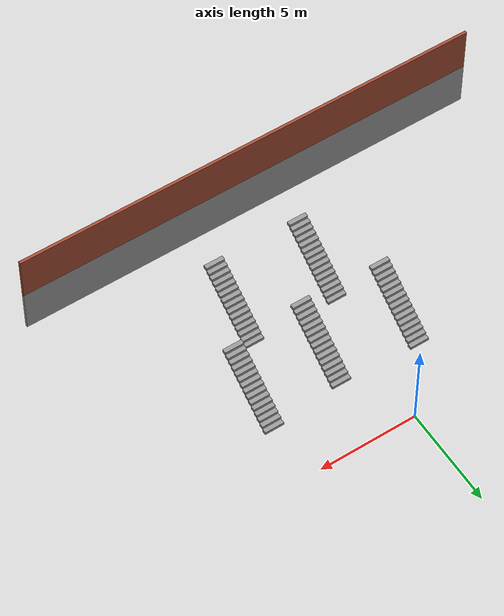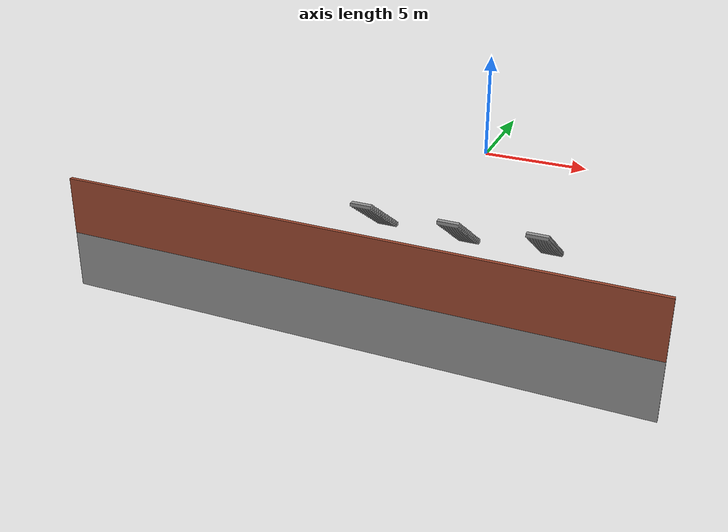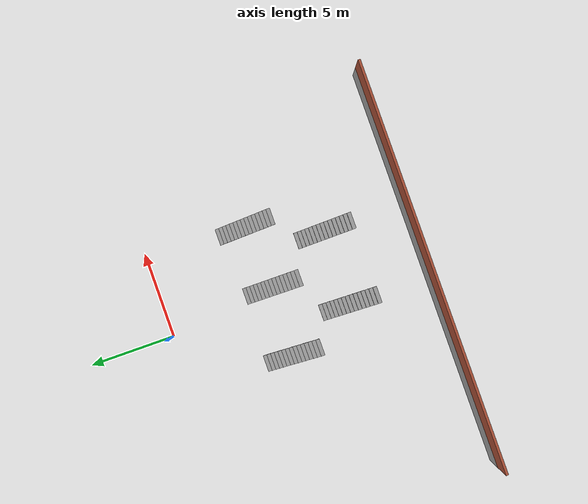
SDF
<sdf version="1.6">
 <world name="default">
  <model name="Untitled_2">
   <pose>-1.18521 -8.18185 -2.6 0 -0 0</pose>
   <link name="Stairs_41">
    <visual name="Stairs_41_Visual_0">
     <pose>-2.27562 3.7332 0.083333 0 -0 0</pose>
     <geometry><box><size>1 0.233333 0.166667</size></box></geometry>
     <material>
      <script><uri>file://media/materials/scripts/gazebo.material</uri><name>Gazebo/Grey</name></script>
      <ambient>1 1 1 1</ambient>
     </material>
     <meta><layer>0</layer></meta>
    </visual>
    <collision name="Stairs_41_Collision_0">
     <geometry><box><size>1 0.233333 0.166667</size></box></geometry>
     <pose>-2.27562 3.7332 0.083333 0 -0 0</pose>
    </collision>
    <visual name="Stairs_41_Visual_1">
     <pose>-2.27562 3.49987 0.25 0 -0 0</pose>
     <geometry><box><size>1 0.233333 0.166667</size></box></geometry>
     <material>
      <script><uri>file://media/materials/scripts/gazebo.material</uri><name>Gazebo/Grey</name></script>
      <ambient>1 1 1 1</ambient>
     </material>
     <meta><layer>0</layer></meta>
    </visual>
    <collision name="Stairs_41_Collision_1">
     <geometry><box><size>1 0.233333 0.166667</size></box></geometry>
     <pose>-2.27562 3.49987 0.25 0 -0 0</pose>
    </collision>
    <visual name="Stairs_41_Visual_2">
     <pose>-2.27562 3.26654 0.416667 0 -0 0</pose>
     <geometry><box><size>1 0.233333 0.166667</size></box></geometry>
     <material>
      <script><uri>file://media/materials/scripts/gazebo.material</uri><name>Gazebo/Grey</name></script>
      <ambient>1 1 1 1</ambient>
     </material>
     <meta><layer>0</layer></meta>
    </visual>
    <collision name="Stairs_41_Collision_2">
     <geometry><box><size>1 0.233333 0.166667</size></box></geometry>
     <pose>-2.27562 3.26654 0.416667 0 -0 0</pose>
    </collision>
    <visual name="Stairs_41_Visual_3">
     <pose>-2.27562 3.03321 0.583333 0 -0 0</pose>
     <geometry><box><size>1 0.233333 0.166667</size></box></geometry>
     <material>
      <script><uri>file://media/materials/scripts/gazebo.material</uri><name>Gazebo/Grey</name></script>
      <ambient>1 1 1 1</ambient>
     </material>
     <meta><layer>0</layer></meta>
    </visual>
    <collision name="Stairs_41_Collision_3">
     <geometry><box><size>1 0.233333 0.166667</size></box></geometry>
     <pose>-2.27562 3.03321 0.583333 0 -0 0</pose>
    </collision>
    <visual name="Stairs_41_Visual_4">
     <pose>-2.27562 2.79987 0.75 0 -0 0</pose>
     <geometry><box><size>1 0.233333 0.166667</size></box></geometry>
     <material>
      <script><uri>file://media/materials/scripts/gazebo.material</uri><name>Gazebo/Grey</name></script>
      <ambient>1 1 1 1</ambient>
     </material>
     <meta><layer>0</layer></meta>
    </visual>
    <collision name="Stairs_41_Collision_4">
     <geometry><box><size>1 0.233333 0.166667</size></box></geometry>
     <pose>-2.27562 2.79987 0.75 0 -0 0</pose>
    </collision>
    <visual name="Stairs_41_Visual_5">
     <pose>-2.27562 2.56654 0.916667 0 -0 0</pose>
     <geometry><box><size>1 0.233333 0.166667</size></box></geometry>
     <material>
      <script><uri>file://media/materials/scripts/gazebo.material</uri><name>Gazebo/Grey</name></script>
      <ambient>1 1 1 1</ambient>
     </material>
     <meta><layer>0</layer></meta>
    </visual>
    <collision name="Stairs_41_Collision_5">
     <geometry><box><size>1 0.233333 0.166667</size></box></geometry>
     <pose>-2.27562 2.56654 0.916667 0 -0 0</pose>
    </collision>
    <visual name="Stairs_41_Visual_6">
     <pose>-2.27562 2.3332 1.08333 0 -0 0</pose>
     <geometry><box><size>1 0.233333 0.166667</size></box></geometry>
     <material>
      <script><uri>file://media/materials/scripts/gazebo.material</uri><name>Gazebo/Grey</name></script>
      <ambient>1 1 1 1</ambient>
     </material>
     <meta><layer>0</layer></meta>
    </visual>
    <collision name="Stairs_41_Collision_6">
     <geometry><box><size>1 0.233333 0.166667</size></box></geometry>
     <pose>-2.27562 2.3332 1.08333 0 -0 0</pose>
    </collision>
    <visual name="Stairs_41_Visual_7">
     <pose>-2.27562 2.09987 1.25 0 -0 0</pose>
     <geometry><box><size>1 0.233333 0.166667</size></box></geometry>
     <material>
      <script><uri>file://media/materials/scripts/gazebo.material</uri><name>Gazebo/Grey</name></script>
      <ambient>1 1 1 1</ambient>
     </material>
     <meta><layer>0</layer></meta>
    </visual>
    <collision name="Stairs_41_Collision_7">
     <geometry><box><size>1 0.233333 0.166667</size></box></geometry>
     <pose>-2.27562 2.09987 1.25 0 -0 0</pose>
    </collision>
    <visual name="Stairs_41_Visual_8">
     <pose>-2.27562 1.86654 1.41667 0 -0 0</pose>
     <geometry><box><size>1 0.233333 0.166667</size></box></geometry>
     <material>
      <script><uri>file://media/materials/scripts/gazebo.material</uri><name>Gazebo/Grey</name></script>
      <ambient>1 1 1 1</ambient>
     </material>
     <meta><layer>0</layer></meta>
    </visual>
    <collision name="Stairs_41_Collision_8">
     <geometry><box><size>1 0.233333 0.166667</size></box></geometry>
     <pose>-2.27562 1.86654 1.41667 0 -0 0</pose>
    </collision>
    <visual name="Stairs_41_Visual_9">
     <pose>-2.27562 1.63321 1.58333 0 -0 0</pose>
     <geometry><box><size>1 0.233333 0.166667</size></box></geometry>
     <material>
      <script><uri>file://media/materials/scripts/gazebo.material</uri><name>Gazebo/Grey</name></script>
      <ambient>1 1 1 1</ambient>
     </material>
     <meta><layer>0</layer></meta>
    </visual>
    <collision name="Stairs_41_Collision_9">
     <geometry><box><size>1 0.233333 0.166667</size></box></geometry>
     <pose>-2.27562 1.63321 1.58333 0 -0 0</pose>
    </collision>
    <visual name="Stairs_41_Visual_10">
     <pose>-2.27562 1.39987 1.75 0 -0 0</pose>
     <geometry><box><size>1 0.233333 0.166667</size></box></geometry>
     <material>
      <script><uri>file://media/materials/scripts/gazebo.material</uri><name>Gazebo/Grey</name></script>
      <ambient>1 1 1 1</ambient>
     </material>
     <meta><layer>0</layer></meta>
    </visual>
    <collision name="Stairs_41_Collision_10">
     <geometry><box><size>1 0.233333 0.166667</size></box></geometry>
     <pose>-2.27562 1.39987 1.75 0 -0 0</pose>
    </collision>
    <visual name="Stairs_41_Visual_11">
     <pose>-2.27562 1.16654 1.91667 0 -0 0</pose>
     <geometry><box><size>1 0.233333 0.166667</size></box></geometry>
     <material>
      <script><uri>file://media/materials/scripts/gazebo.material</uri><name>Gazebo/Grey</name></script>
      <ambient>1 1 1 1</ambient>
     </material>
     <meta><layer>0</layer></meta>
    </visual>
    <collision name="Stairs_41_Collision_11">
     <geometry><box><size>1 0.233333 0.166667</size></box></geometry>
     <pose>-2.27562 1.16654 1.91667 0 -0 0</pose>
    </collision>
    <visual name="Stairs_41_Visual_12">
     <pose>-2.27562 0.933206 2.08333 0 -0 0</pose>
     <geometry><box><size>1 0.233333 0.166667</size></box></geometry>
     <material>
      <script><uri>file://media/materials/scripts/gazebo.material</uri><name>Gazebo/Grey</name></script>
      <ambient>1 1 1 1</ambient>
     </material>
     <meta><layer>0</layer></meta>
    </visual>
    <collision name="Stairs_41_Collision_12">
     <geometry><box><size>1 0.233333 0.166667</size></box></geometry>
     <pose>-2.27562 0.933206 2.08333 0 -0 0</pose>
    </collision>
    <visual name="Stairs_41_Visual_13">
     <pose>-2.27562 0.699872 2.25 0 -0 0</pose>
     <geometry><box><size>1 0.233333 0.166667</size></box></geometry>
     <material>
      <script><uri>file://media/materials/scripts/gazebo.material</uri><name>Gazebo/Grey</name></script>
      <ambient>1 1 1 1</ambient>
     </material>
     <meta><layer>0</layer></meta>
    </visual>
    <collision name="Stairs_41_Collision_13">
     <geometry><box><size>1 0.233333 0.166667</size></box></geometry>
     <pose>-2.27562 0.699872 2.25 0 -0 0</pose>
    </collision>
    <visual name="Stairs_41_Visual_14">
     <pose>-2.27562 0.466539 2.41667 0 -0 0</pose>
     <geometry><box><size>1 0.233333 0.166667</size></box></geometry>
     <material>
      <script><uri>file://media/materials/scripts/gazebo.material</uri><name>Gazebo/Grey</name></script>
      <ambient>1 1 1 1</ambient>
     </material>
     <meta><layer>0</layer></meta>
    </visual>
    <collision name="Stairs_41_Collision_14">
     <geometry><box><size>1 0.233333 0.166667</size></box></geometry>
     <pose>-2.27562 0.466539 2.41667 0 -0 0</pose>
    </collision>
   </link>
   <link name="Stairs_42">
    <visual name="Stairs_42_Visual_0">
     <pose>-0.526618 -0.394449 0.083333 0 -0 0</pose>
     <geometry><box><size>1 0.233333 0.166667</size></box></geometry>
     <material>
      <script><uri>file://media/materials/scripts/gazebo.material</uri><name>Gazebo/Grey</name></script>
      <ambient>1 1 1 1</ambient>
     </material>
     <meta><layer>0</layer></meta>
    </visual>
    <collision name="Stairs_42_Collision_0">
     <geometry><box><size>1 0.233333 0.166667</size></box></geometry>
     <pose>-0.526618 -0.394449 0.083333 0 -0 0</pose>
    </collision>
    <visual name="Stairs_42_Visual_1">
     <pose>-0.526618 -0.627783 0.25 0 -0 0</pose>
     <geometry><box><size>1 0.233333 0.166667</size></box></geometry>
     <material>
      <script><uri>file://media/materials/scripts/gazebo.material</uri><name>Gazebo/Grey</name></script>
      <ambient>1 1 1 1</ambient>
     </material>
     <meta><layer>0</layer></meta>
    </visual>
    <collision name="Stairs_42_Collision_1">
     <geometry><box><size>1 0.233333 0.166667</size></box></geometry>
     <pose>-0.526618 -0.627783 0.25 0 -0 0</pose>
    </collision>
    <visual name="Stairs_42_Visual_2">
     <pose>-0.526618 -0.861115 0.416667 0 -0 0</pose>
     <geometry><box><size>1 0.233333 0.166667</size></box></geometry>
     <material>
      <script><uri>file://media/materials/scripts/gazebo.material</uri><name>Gazebo/Grey</name></script>
      <ambient>1 1 1 1</ambient>
     </material>
     <meta><layer>0</layer></meta>
    </visual>
    <collision name="Stairs_42_Collision_2">
     <geometry><box><size>1 0.233333 0.166667</size></box></geometry>
     <pose>-0.526618 -0.861115 0.416667 0 -0 0</pose>
    </collision>
    <visual name="Stairs_42_Visual_3">
     <pose>-0.526618 -1.09445 0.583333 0 -0 0</pose>
     <geometry><box><size>1 0.233333 0.166667</size></box></geometry>
     <material>
      <script><uri>file://media/materials/scripts/gazebo.material</uri><name>Gazebo/Grey</name></script>
      <ambient>1 1 1 1</ambient>
     </material>
     <meta><layer>0</layer></meta>
    </visual>
    <collision name="Stairs_42_Collision_3">
     <geometry><box><size>1 0.233333 0.166667</size></box></geometry>
     <pose>-0.526618 -1.09445 0.583333 0 -0 0</pose>
    </collision>
    <visual name="Stairs_42_Visual_4">
     <pose>-0.526618 -1.32778 0.75 0 -0 0</pose>
     <geometry><box><size>1 0.233333 0.166667</size></box></geometry>
     <material>
      <script><uri>file://media/materials/scripts/gazebo.material</uri><name>Gazebo/Grey</name></script>
      <ambient>1 1 1 1</ambient>
     </material>
     <meta><layer>0</layer></meta>
    </visual>
    <collision name="Stairs_42_Collision_4">
     <geometry><box><size>1 0.233333 0.166667</size></box></geometry>
     <pose>-0.526618 -1.32778 0.75 0 -0 0</pose>
    </collision>
    <visual name="Stairs_42_Visual_5">
     <pose>-0.526618 -1.56112 0.916667 0 -0 0</pose>
     <geometry><box><size>1 0.233333 0.166667</size></box></geometry>
     <material>
      <script><uri>file://media/materials/scripts/gazebo.material</uri><name>Gazebo/Grey</name></script>
      <ambient>1 1 1 1</ambient>
     </material>
     <meta><layer>0</layer></meta>
    </visual>
    <collision name="Stairs_42_Collision_5">
     <geometry><box><size>1 0.233333 0.166667</size></box></geometry>
     <pose>-0.526618 -1.56112 0.916667 0 -0 0</pose>
    </collision>
    <visual name="Stairs_42_Visual_6">
     <pose>-0.526618 -1.79445 1.08333 0 -0 0</pose>
     <geometry><box><size>1 0.233333 0.166667</size></box></geometry>
     <material>
      <script><uri>file://media/materials/scripts/gazebo.material</uri><name>Gazebo/Grey</name></script>
      <ambient>1 1 1 1</ambient>
     </material>
     <meta><layer>0</layer></meta>
    </visual>
    <collision name="Stairs_42_Collision_6">
     <geometry><box><size>1 0.233333 0.166667</size></box></geometry>
     <pose>-0.526618 -1.79445 1.08333 0 -0 0</pose>
    </collision>
    <visual name="Stairs_42_Visual_7">
     <pose>-0.526618 -2.02778 1.25 0 -0 0</pose>
     <geometry><box><size>1 0.233333 0.166667</size></box></geometry>
     <material>
      <script><uri>file://media/materials/scripts/gazebo.material</uri><name>Gazebo/Grey</name></script>
      <ambient>1 1 1 1</ambient>
     </material>
     <meta><layer>0</layer></meta>
    </visual>
    <collision name="Stairs_42_Collision_7">
     <geometry><box><size>1 0.233333 0.166667</size></box></geometry>
     <pose>-0.526618 -2.02778 1.25 0 -0 0</pose>
    </collision>
    <visual name="Stairs_42_Visual_8">
     <pose>-0.526618 -2.26112 1.41667 0 -0 0</pose>
     <geometry><box><size>1 0.233333 0.166667</size></box></geometry>
     <material>
      <script><uri>file://media/materials/scripts/gazebo.material</uri><name>Gazebo/Grey</name></script>
      <ambient>1 1 1 1</ambient>
     </material>
     <meta><layer>0</layer></meta>
    </visual>
    <collision name="Stairs_42_Collision_8">
     <geometry><box><size>1 0.233333 0.166667</size></box></geometry>
     <pose>-0.526618 -2.26112 1.41667 0 -0 0</pose>
    </collision>
    <visual name="Stairs_42_Visual_9">
     <pose>-0.526618 -2.49445 1.58333 0 -0 0</pose>
     <geometry><box><size>1 0.233333 0.166667</size></box></geometry>
     <material>
      <script><uri>file://media/materials/scripts/gazebo.material</uri><name>Gazebo/Grey</name></script>
      <ambient>1 1 1 1</ambient>
     </material>
     <meta><layer>0</layer></meta>
    </visual>
    <collision name="Stairs_42_Collision_9">
     <geometry><box><size>1 0.233333 0.166667</size></box></geometry>
     <pose>-0.526618 -2.49445 1.58333 0 -0 0</pose>
    </collision>
    <visual name="Stairs_42_Visual_10">
     <pose>-0.526618 -2.72778 1.75 0 -0 0</pose>
     <geometry><box><size>1 0.233333 0.166667</size></box></geometry>
     <material>
      <script><uri>file://media/materials/scripts/gazebo.material</uri><name>Gazebo/Grey</name></script>
      <ambient>1 1 1 1</ambient>
     </material>
     <meta><layer>0</layer></meta>
    </visual>
    <collision name="Stairs_42_Collision_10">
     <geometry><box><size>1 0.233333 0.166667</size></box></geometry>
     <pose>-0.526618 -2.72778 1.75 0 -0 0</pose>
    </collision>
    <visual name="Stairs_42_Visual_11">
     <pose>-0.526618 -2.96112 1.91667 0 -0 0</pose>
     <geometry><box><size>1 0.233333 0.166667</size></box></geometry>
     <material>
      <script><uri>file://media/materials/scripts/gazebo.material</uri><name>Gazebo/Grey</name></script>
      <ambient>1 1 1 1</ambient>
     </material>
     <meta><layer>0</layer></meta>
    </visual>
    <collision name="Stairs_42_Collision_11">
     <geometry><box><size>1 0.233333 0.166667</size></box></geometry>
     <pose>-0.526618 -2.96112 1.91667 0 -0 0</pose>
    </collision>
    <visual name="Stairs_42_Visual_12">
     <pose>-0.526618 -3.19445 2.08333 0 -0 0</pose>
     <geometry><box><size>1 0.233333 0.166667</size></box></geometry>
     <material>
      <script><uri>file://media/materials/scripts/gazebo.material</uri><name>Gazebo/Grey</name></script>
      <ambient>1 1 1 1</ambient>
     </material>
     <meta><layer>0</layer></meta>
    </visual>
    <collision name="Stairs_42_Collision_12">
     <geometry><box><size>1 0.233333 0.166667</size></box></geometry>
     <pose>-0.526618 -3.19445 2.08333 0 -0 0</pose>
    </collision>
    <visual name="Stairs_42_Visual_13">
     <pose>-0.526618 -3.42778 2.25 0 -0 0</pose>
     <geometry><box><size>1 0.233333 0.166667</size></box></geometry>
     <material>
      <script><uri>file://media/materials/scripts/gazebo.material</uri><name>Gazebo/Grey</name></script>
      <ambient>1 1 1 1</ambient>
     </material>
     <meta><layer>0</layer></meta>
    </visual>
    <collision name="Stairs_42_Collision_13">
     <geometry><box><size>1 0.233333 0.166667</size></box></geometry>
     <pose>-0.526618 -3.42778 2.25 0 -0 0</pose>
    </collision>
    <visual name="Stairs_42_Visual_14">
     <pose>-0.526618 -3.66112 2.41667 0 -0 0</pose>
     <geometry><box><size>1 0.233333 0.166667</size></box></geometry>
     <material>
      <script><uri>file://media/materials/scripts/gazebo.material</uri><name>Gazebo/Grey</name></script>
      <ambient>1 1 1 1</ambient>
     </material>
     <meta><layer>0</layer></meta>
    </visual>
    <collision name="Stairs_42_Collision_14">
     <geometry><box><size>1 0.233333 0.166667</size></box></geometry>
     <pose>-0.526618 -3.66112 2.41667 0 -0 0</pose>
    </collision>
   </link>
   <link name="Stairs_43">
    <visual name="Stairs_43_Visual_0">
     <pose>1.92199 3.5583 0.083333 0 -0 0</pose>
     <geometry><box><size>1 0.233333 0.166667</size></box></geometry>
     <material>
      <script><uri>file://media/materials/scripts/gazebo.material</uri><name>Gazebo/Grey</name></script>
      <ambient>1 1 1 1</ambient>
     </material>
     <meta><layer>0</layer></meta>
    </visual>
    <collision name="Stairs_43_Collision_0">
     <geometry><box><size>1 0.233333 0.166667</size></box></geometry>
     <pose>1.92199 3.5583 0.083333 0 -0 0</pose>
    </collision>
    <visual name="Stairs_43_Visual_1">
     <pose>1.92199 3.32497 0.25 0 -0 0</pose>
     <geometry><box><size>1 0.233333 0.166667</size></box></geometry>
     <material>
      <script><uri>file://media/materials/scripts/gazebo.material</uri><name>Gazebo/Grey</name></script>
      <ambient>1 1 1 1</ambient>
     </material>
     <meta><layer>0</layer></meta>
    </visual>
    <collision name="Stairs_43_Collision_1">
     <geometry><box><size>1 0.233333 0.166667</size></box></geometry>
     <pose>1.92199 3.32497 0.25 0 -0 0</pose>
    </collision>
    <visual name="Stairs_43_Visual_2">
     <pose>1.92199 3.09164 0.416667 0 -0 0</pose>
     <geometry><box><size>1 0.233333 0.166667</size></box></geometry>
     <material>
      <script><uri>file://media/materials/scripts/gazebo.material</uri><name>Gazebo/Grey</name></script>
      <ambient>1 1 1 1</ambient>
     </material>
     <meta><layer>0</layer></meta>
    </visual>
    <collision name="Stairs_43_Collision_2">
     <geometry><box><size>1 0.233333 0.166667</size></box></geometry>
     <pose>1.92199 3.09164 0.416667 0 -0 0</pose>
    </collision>
    <visual name="Stairs_43_Visual_3">
     <pose>1.92199 2.85831 0.583333 0 -0 0</pose>
     <geometry><box><size>1 0.233333 0.166667</size></box></geometry>
     <material>
      <script><uri>file://media/materials/scripts/gazebo.material</uri><name>Gazebo/Grey</name></script>
      <ambient>1 1 1 1</ambient>
     </material>
     <meta><layer>0</layer></meta>
    </visual>
    <collision name="Stairs_43_Collision_3">
     <geometry><box><size>1 0.233333 0.166667</size></box></geometry>
     <pose>1.92199 2.85831 0.583333 0 -0 0</pose>
    </collision>
    <visual name="Stairs_43_Visual_4">
     <pose>1.92199 2.62497 0.75 0 -0 0</pose>
     <geometry><box><size>1 0.233333 0.166667</size></box></geometry>
     <material>
      <script><uri>file://media/materials/scripts/gazebo.material</uri><name>Gazebo/Grey</name></script>
      <ambient>1 1 1 1</ambient>
     </material>
     <meta><layer>0</layer></meta>
    </visual>
    <collision name="Stairs_43_Collision_4">
     <geometry><box><size>1 0.233333 0.166667</size></box></geometry>
     <pose>1.92199 2.62497 0.75 0 -0 0</pose>
    </collision>
    <visual name="Stairs_43_Visual_5">
     <pose>1.92199 2.39164 0.916667 0 -0 0</pose>
     <geometry><box><size>1 0.233333 0.166667</size></box></geometry>
     <material>
      <script><uri>file://media/materials/scripts/gazebo.material</uri><name>Gazebo/Grey</name></script>
      <ambient>1 1 1 1</ambient>
     </material>
     <meta><layer>0</layer></meta>
    </visual>
    <collision name="Stairs_43_Collision_5">
     <geometry><box><size>1 0.233333 0.166667</size></box></geometry>
     <pose>1.92199 2.39164 0.916667 0 -0 0</pose>
    </collision>
    <visual name="Stairs_43_Visual_6">
     <pose>1.92199 2.1583 1.08333 0 -0 0</pose>
     <geometry><box><size>1 0.233333 0.166667</size></box></geometry>
     <material>
      <script><uri>file://media/materials/scripts/gazebo.material</uri><name>Gazebo/Grey</name></script>
      <ambient>1 1 1 1</ambient>
     </material>
     <meta><layer>0</layer></meta>
    </visual>
    <collision name="Stairs_43_Collision_6">
     <geometry><box><size>1 0.233333 0.166667</size></box></geometry>
     <pose>1.92199 2.1583 1.08333 0 -0 0</pose>
    </collision>
    <visual name="Stairs_43_Visual_7">
     <pose>1.92199 1.92497 1.25 0 -0 0</pose>
     <geometry><box><size>1 0.233333 0.166667</size></box></geometry>
     <material>
      <script><uri>file://media/materials/scripts/gazebo.material</uri><name>Gazebo/Grey</name></script>
      <ambient>1 1 1 1</ambient>
     </material>
     <meta><layer>0</layer></meta>
    </visual>
    <collision name="Stairs_43_Collision_7">
     <geometry><box><size>1 0.233333 0.166667</size></box></geometry>
     <pose>1.92199 1.92497 1.25 0 -0 0</pose>
    </collision>
    <visual name="Stairs_43_Visual_8">
     <pose>1.92199 1.69164 1.41667 0 -0 0</pose>
     <geometry><box><size>1 0.233333 0.166667</size></box></geometry>
     <material>
      <script><uri>file://media/materials/scripts/gazebo.material</uri><name>Gazebo/Grey</name></script>
      <ambient>1 1 1 1</ambient>
     </material>
     <meta><layer>0</layer></meta>
    </visual>
    <collision name="Stairs_43_Collision_8">
     <geometry><box><size>1 0.233333 0.166667</size></box></geometry>
     <pose>1.92199 1.69164 1.41667 0 -0 0</pose>
    </collision>
    <visual name="Stairs_43_Visual_9">
     <pose>1.92199 1.4583 1.58333 0 -0 0</pose>
     <geometry><box><size>1 0.233333 0.166667</size></box></geometry>
     <material>
      <script><uri>file://media/materials/scripts/gazebo.material</uri><name>Gazebo/Grey</name></script>
      <ambient>1 1 1 1</ambient>
     </material>
     <meta><layer>0</layer></meta>
    </visual>
    <collision name="Stairs_43_Collision_9">
     <geometry><box><size>1 0.233333 0.166667</size></box></geometry>
     <pose>1.92199 1.4583 1.58333 0 -0 0</pose>
    </collision>
    <visual name="Stairs_43_Visual_10">
     <pose>1.92199 1.22497 1.75 0 -0 0</pose>
     <geometry><box><size>1 0.233333 0.166667</size></box></geometry>
     <material>
      <script><uri>file://media/materials/scripts/gazebo.material</uri><name>Gazebo/Grey</name></script>
      <ambient>1 1 1 1</ambient>
     </material>
     <meta><layer>0</layer></meta>
    </visual>
    <collision name="Stairs_43_Collision_10">
     <geometry><box><size>1 0.233333 0.166667</size></box></geometry>
     <pose>1.92199 1.22497 1.75 0 -0 0</pose>
    </collision>
    <visual name="Stairs_43_Visual_11">
     <pose>1.92199 0.991638 1.91667 0 -0 0</pose>
     <geometry><box><size>1 0.233333 0.166667</size></box></geometry>
     <material>
      <script><uri>file://media/materials/scripts/gazebo.material</uri><name>Gazebo/Grey</name></script>
      <ambient>1 1 1 1</ambient>
     </material>
     <meta><layer>0</layer></meta>
    </visual>
    <collision name="Stairs_43_Collision_11">
     <geometry><box><size>1 0.233333 0.166667</size></box></geometry>
     <pose>1.92199 0.991638 1.91667 0 -0 0</pose>
    </collision>
    <visual name="Stairs_43_Visual_12">
     <pose>1.92199 0.758305 2.08333 0 -0 0</pose>
     <geometry><box><size>1 0.233333 0.166667</size></box></geometry>
     <material>
      <script><uri>file://media/materials/scripts/gazebo.material</uri><name>Gazebo/Grey</name></script>
      <ambient>1 1 1 1</ambient>
     </material>
     <meta><layer>0</layer></meta>
    </visual>
    <collision name="Stairs_43_Collision_12">
     <geometry><box><size>1 0.233333 0.166667</size></box></geometry>
     <pose>1.92199 0.758305 2.08333 0 -0 0</pose>
    </collision>
    <visual name="Stairs_43_Visual_13">
     <pose>1.92199 0.524971 2.25 0 -0 0</pose>
     <geometry><box><size>1 0.233333 0.166667</size></box></geometry>
     <material>
      <script><uri>file://media/materials/scripts/gazebo.material</uri><name>Gazebo/Grey</name></script>
      <ambient>1 1 1 1</ambient>
     </material>
     <meta><layer>0</layer></meta>
    </visual>
    <collision name="Stairs_43_Collision_13">
     <geometry><box><size>1 0.233333 0.166667</size></box></geometry>
     <pose>1.92199 0.524971 2.25 0 -0 0</pose>
    </collision>
    <visual name="Stairs_43_Visual_14">
     <pose>1.92199 0.291638 2.41667 0 -0 0</pose>
     <geometry><box><size>1 0.233333 0.166667</size></box></geometry>
     <material>
      <script><uri>file://media/materials/scripts/gazebo.material</uri><name>Gazebo/Grey</name></script>
      <ambient>1 1 1 1</ambient>
     </material>
     <meta><layer>0</layer></meta>
    </visual>
    <collision name="Stairs_43_Collision_14">
     <geometry><box><size>1 0.233333 0.166667</size></box></geometry>
     <pose>1.92199 0.291638 2.41667 0 -0 0</pose>
    </collision>
   </link>
   <link name="Stairs_44">
    <visual name="Stairs_44_Visual_0">
     <pose>4.0208 -0.42943 0.083333 0 -0 0</pose>
     <geometry><box><size>1 0.233333 0.166667</size></box></geometry>
     <material>
      <script><uri>file://media/materials/scripts/gazebo.material</uri><name>Gazebo/Grey</name></script>
      <ambient>1 1 1 1</ambient>
     </material>
     <meta><layer>0</layer></meta>
    </visual>
    <collision name="Stairs_44_Collision_0">
     <geometry><box><size>1 0.233333 0.166667</size></box></geometry>
     <pose>4.0208 -0.42943 0.083333 0 -0 0</pose>
    </collision>
    <visual name="Stairs_44_Visual_1">
     <pose>4.0208 -0.662764 0.25 0 -0 0</pose>
     <geometry><box><size>1 0.233333 0.166667</size></box></geometry>
     <material>
      <script><uri>file://media/materials/scripts/gazebo.material</uri><name>Gazebo/Grey</name></script>
      <ambient>1 1 1 1</ambient>
     </material>
     <meta><layer>0</layer></meta>
    </visual>
    <collision name="Stairs_44_Collision_1">
     <geometry><box><size>1 0.233333 0.166667</size></box></geometry>
     <pose>4.0208 -0.662764 0.25 0 -0 0</pose>
    </collision>
    <visual name="Stairs_44_Visual_2">
     <pose>4.0208 -0.896096 0.416667 0 -0 0</pose>
     <geometry><box><size>1 0.233333 0.166667</size></box></geometry>
     <material>
      <script><uri>file://media/materials/scripts/gazebo.material</uri><name>Gazebo/Grey</name></script>
      <ambient>1 1 1 1</ambient>
     </material>
     <meta><layer>0</layer></meta>
    </visual>
    <collision name="Stairs_44_Collision_2">
     <geometry><box><size>1 0.233333 0.166667</size></box></geometry>
     <pose>4.0208 -0.896096 0.416667 0 -0 0</pose>
    </collision>
    <visual name="Stairs_44_Visual_3">
     <pose>4.0208 -1.12943 0.583333 0 -0 0</pose>
     <geometry><box><size>1 0.233333 0.166667</size></box></geometry>
     <material>
      <script><uri>file://media/materials/scripts/gazebo.material</uri><name>Gazebo/Grey</name></script>
      <ambient>1 1 1 1</ambient>
     </material>
     <meta><layer>0</layer></meta>
    </visual>
    <collision name="Stairs_44_Collision_3">
     <geometry><box><size>1 0.233333 0.166667</size></box></geometry>
     <pose>4.0208 -1.12943 0.583333 0 -0 0</pose>
    </collision>
    <visual name="Stairs_44_Visual_4">
     <pose>4.0208 -1.36276 0.75 0 -0 0</pose>
     <geometry><box><size>1 0.233333 0.166667</size></box></geometry>
     <material>
      <script><uri>file://media/materials/scripts/gazebo.material</uri><name>Gazebo/Grey</name></script>
      <ambient>1 1 1 1</ambient>
     </material>
     <meta><layer>0</layer></meta>
    </visual>
    <collision name="Stairs_44_Collision_4">
     <geometry><box><size>1 0.233333 0.166667</size></box></geometry>
     <pose>4.0208 -1.36276 0.75 0 -0 0</pose>
    </collision>
    <visual name="Stairs_44_Visual_5">
     <pose>4.0208 -1.5961 0.916667 0 -0 0</pose>
     <geometry><box><size>1 0.233333 0.166667</size></box></geometry>
     <material>
      <script><uri>file://media/materials/scripts/gazebo.material</uri><name>Gazebo/Grey</name></script>
      <ambient>1 1 1 1</ambient>
     </material>
     <meta><layer>0</layer></meta>
    </visual>
    <collision name="Stairs_44_Collision_5">
     <geometry><box><size>1 0.233333 0.166667</size></box></geometry>
     <pose>4.0208 -1.5961 0.916667 0 -0 0</pose>
    </collision>
    <visual name="Stairs_44_Visual_6">
     <pose>4.0208 -1.82943 1.08333 0 -0 0</pose>
     <geometry><box><size>1 0.233333 0.166667</size></box></geometry>
     <material>
      <script><uri>file://media/materials/scripts/gazebo.material</uri><name>Gazebo/Grey</name></script>
      <ambient>1 1 1 1</ambient>
     </material>
     <meta><layer>0</layer></meta>
    </visual>
    <collision name="Stairs_44_Collision_6">
     <geometry><box><size>1 0.233333 0.166667</size></box></geometry>
     <pose>4.0208 -1.82943 1.08333 0 -0 0</pose>
    </collision>
    <visual name="Stairs_44_Visual_7">
     <pose>4.0208 -2.06276 1.25 0 -0 0</pose>
     <geometry><box><size>1 0.233333 0.166667</size></box></geometry>
     <material>
      <script><uri>file://media/materials/scripts/gazebo.material</uri><name>Gazebo/Grey</name></script>
      <ambient>1 1 1 1</ambient>
     </material>
     <meta><layer>0</layer></meta>
    </visual>
    <collision name="Stairs_44_Collision_7">
     <geometry><box><size>1 0.233333 0.166667</size></box></geometry>
     <pose>4.0208 -2.06276 1.25 0 -0 0</pose>
    </collision>
    <visual name="Stairs_44_Visual_8">
     <pose>4.0208 -2.2961 1.41667 0 -0 0</pose>
     <geometry><box><size>1 0.233333 0.166667</size></box></geometry>
     <material>
      <script><uri>file://media/materials/scripts/gazebo.material</uri><name>Gazebo/Grey</name></script>
      <ambient>1 1 1 1</ambient>
     </material>
     <meta><layer>0</layer></meta>
    </visual>
    <collision name="Stairs_44_Collision_8">
     <geometry><box><size>1 0.233333 0.166667</size></box></geometry>
     <pose>4.0208 -2.2961 1.41667 0 -0 0</pose>
    </collision>
    <visual name="Stairs_44_Visual_9">
     <pose>4.0208 -2.52943 1.58333 0 -0 0</pose>
     <geometry><box><size>1 0.233333 0.166667</size></box></geometry>
     <material>
      <script><uri>file://media/materials/scripts/gazebo.material</uri><name>Gazebo/Grey</name></script>
      <ambient>1 1 1 1</ambient>
     </material>
     <meta><layer>0</layer></meta>
    </visual>
    <collision name="Stairs_44_Collision_9">
     <geometry><box><size>1 0.233333 0.166667</size></box></geometry>
     <pose>4.0208 -2.52943 1.58333 0 -0 0</pose>
    </collision>
    <visual name="Stairs_44_Visual_10">
     <pose>4.0208 -2.76276 1.75 0 -0 0</pose>
     <geometry><box><size>1 0.233333 0.166667</size></box></geometry>
     <material>
      <script><uri>file://media/materials/scripts/gazebo.material</uri><name>Gazebo/Grey</name></script>
      <ambient>1 1 1 1</ambient>
     </material>
     <meta><layer>0</layer></meta>
    </visual>
    <collision name="Stairs_44_Collision_10">
     <geometry><box><size>1 0.233333 0.166667</size></box></geometry>
     <pose>4.0208 -2.76276 1.75 0 -0 0</pose>
    </collision>
    <visual name="Stairs_44_Visual_11">
     <pose>4.0208 -2.9961 1.91667 0 -0 0</pose>
     <geometry><box><size>1 0.233333 0.166667</size></box></geometry>
     <material>
      <script><uri>file://media/materials/scripts/gazebo.material</uri><name>Gazebo/Grey</name></script>
      <ambient>1 1 1 1</ambient>
     </material>
     <meta><layer>0</layer></meta>
    </visual>
    <collision name="Stairs_44_Collision_11">
     <geometry><box><size>1 0.233333 0.166667</size></box></geometry>
     <pose>4.0208 -2.9961 1.91667 0 -0 0</pose>
    </collision>
    <visual name="Stairs_44_Visual_12">
     <pose>4.0208 -3.22943 2.08333 0 -0 0</pose>
     <geometry><box><size>1 0.233333 0.166667</size></box></geometry>
     <material>
      <script><uri>file://media/materials/scripts/gazebo.material</uri><name>Gazebo/Grey</name></script>
      <ambient>1 1 1 1</ambient>
     </material>
     <meta><layer>0</layer></meta>
    </visual>
    <collision name="Stairs_44_Collision_12">
     <geometry><box><size>1 0.233333 0.166667</size></box></geometry>
     <pose>4.0208 -3.22943 2.08333 0 -0 0</pose>
    </collision>
    <visual name="Stairs_44_Visual_13">
     <pose>4.0208 -3.46276 2.25 0 -0 0</pose>
     <geometry><box><size>1 0.233333 0.166667</size></box></geometry>
     <material>
      <script><uri>file://media/materials/scripts/gazebo.material</uri><name>Gazebo/Grey</name></script>
      <ambient>1 1 1 1</ambient>
     </material>
     <meta><layer>0</layer></meta>
    </visual>
    <collision name="Stairs_44_Collision_13">
     <geometry><box><size>1 0.233333 0.166667</size></box></geometry>
     <pose>4.0208 -3.46276 2.25 0 -0 0</pose>
    </collision>
    <visual name="Stairs_44_Visual_14">
     <pose>4.0208 -3.6961 2.41667 0 -0 0</pose>
     <geometry><box><size>1 0.233333 0.166667</size></box></geometry>
     <material>
      <script><uri>file://media/materials/scripts/gazebo.material</uri><name>Gazebo/Grey</name></script>
      <ambient>1 1 1 1</ambient>
     </material>
     <meta><layer>0</layer></meta>
    </visual>
    <collision name="Stairs_44_Collision_14">
     <geometry><box><size>1 0.233333 0.166667</size></box></geometry>
     <pose>4.0208 -3.6961 2.41667 0 -0 0</pose>
    </collision>
   </link>
   <link name="Stairs_45">
    <visual name="Stairs_45_Visual_0">
     <pose>5.80478 3.90811 0.083333 0 -0 0</pose>
     <geometry><box><size>1 0.233333 0.166667</size></box></geometry>
     <material>
      <script><uri>file://media/materials/scripts/gazebo.material</uri><name>Gazebo/Grey</name></script>
      <ambient>1 1 1 1</ambient>
     </material>
     <meta><layer>0</layer></meta>
    </visual>
    <collision name="Stairs_45_Collision_0">
     <geometry><box><size>1 0.233333 0.166667</size></box></geometry>
     <pose>5.80478 3.90811 0.083333 0 -0 0</pose>
    </collision>
    <visual name="Stairs_45_Visual_1">
     <pose>5.80478 3.67477 0.25 0 -0 0</pose>
     <geometry><box><size>1 0.233333 0.166667</size></box></geometry>
     <material>
      <script><uri>file://media/materials/scripts/gazebo.material</uri><name>Gazebo/Grey</name></script>
      <ambient>1 1 1 1</ambient>
     </material>
     <meta><layer>0</layer></meta>
    </visual>
    <collision name="Stairs_45_Collision_1">
     <geometry><box><size>1 0.233333 0.166667</size></box></geometry>
     <pose>5.80478 3.67477 0.25 0 -0 0</pose>
    </collision>
    <visual name="Stairs_45_Visual_2">
     <pose>5.80478 3.44144 0.416667 0 -0 0</pose>
     <geometry><box><size>1 0.233333 0.166667</size></box></geometry>
     <material>
      <script><uri>file://media/materials/scripts/gazebo.material</uri><name>Gazebo/Grey</name></script>
      <ambient>1 1 1 1</ambient>
     </material>
     <meta><layer>0</layer></meta>
    </visual>
    <collision name="Stairs_45_Collision_2">
     <geometry><box><size>1 0.233333 0.166667</size></box></geometry>
     <pose>5.80478 3.44144 0.416667 0 -0 0</pose>
    </collision>
    <visual name="Stairs_45_Visual_3">
     <pose>5.80478 3.20811 0.583333 0 -0 0</pose>
     <geometry><box><size>1 0.233333 0.166667</size></box></geometry>
     <material>
      <script><uri>file://media/materials/scripts/gazebo.material</uri><name>Gazebo/Grey</name></script>
      <ambient>1 1 1 1</ambient>
     </material>
     <meta><layer>0</layer></meta>
    </visual>
    <collision name="Stairs_45_Collision_3">
     <geometry><box><size>1 0.233333 0.166667</size></box></geometry>
     <pose>5.80478 3.20811 0.583333 0 -0 0</pose>
    </collision>
    <visual name="Stairs_45_Visual_4">
     <pose>5.80478 2.97477 0.75 0 -0 0</pose>
     <geometry><box><size>1 0.233333 0.166667</size></box></geometry>
     <material>
      <script><uri>file://media/materials/scripts/gazebo.material</uri><name>Gazebo/Grey</name></script>
      <ambient>1 1 1 1</ambient>
     </material>
     <meta><layer>0</layer></meta>
    </visual>
    <collision name="Stairs_45_Collision_4">
     <geometry><box><size>1 0.233333 0.166667</size></box></geometry>
     <pose>5.80478 2.97477 0.75 0 -0 0</pose>
    </collision>
    <visual name="Stairs_45_Visual_5">
     <pose>5.80478 2.74144 0.916667 0 -0 0</pose>
     <geometry><box><size>1 0.233333 0.166667</size></box></geometry>
     <material>
      <script><uri>file://media/materials/scripts/gazebo.material</uri><name>Gazebo/Grey</name></script>
      <ambient>1 1 1 1</ambient>
     </material>
     <meta><layer>0</layer></meta>
    </visual>
    <collision name="Stairs_45_Collision_5">
     <geometry><box><size>1 0.233333 0.166667</size></box></geometry>
     <pose>5.80478 2.74144 0.916667 0 -0 0</pose>
    </collision>
    <visual name="Stairs_45_Visual_6">
     <pose>5.80478 2.50811 1.08333 0 -0 0</pose>
     <geometry><box><size>1 0.233333 0.166667</size></box></geometry>
     <material>
      <script><uri>file://media/materials/scripts/gazebo.material</uri><name>Gazebo/Grey</name></script>
      <ambient>1 1 1 1</ambient>
     </material>
     <meta><layer>0</layer></meta>
    </visual>
    <collision name="Stairs_45_Collision_6">
     <geometry><box><size>1 0.233333 0.166667</size></box></geometry>
     <pose>5.80478 2.50811 1.08333 0 -0 0</pose>
    </collision>
    <visual name="Stairs_45_Visual_7">
     <pose>5.80478 2.27477 1.25 0 -0 0</pose>
     <geometry><box><size>1 0.233333 0.166667</size></box></geometry>
     <material>
      <script><uri>file://media/materials/scripts/gazebo.material</uri><name>Gazebo/Grey</name></script>
      <ambient>1 1 1 1</ambient>
     </material>
     <meta><layer>0</layer></meta>
    </visual>
    <collision name="Stairs_45_Collision_7">
     <geometry><box><size>1 0.233333 0.166667</size></box></geometry>
     <pose>5.80478 2.27477 1.25 0 -0 0</pose>
    </collision>
    <visual name="Stairs_45_Visual_8">
     <pose>5.80478 2.04144 1.41667 0 -0 0</pose>
     <geometry><box><size>1 0.233333 0.166667</size></box></geometry>
     <material>
      <script><uri>file://media/materials/scripts/gazebo.material</uri><name>Gazebo/Grey</name></script>
      <ambient>1 1 1 1</ambient>
     </material>
     <meta><layer>0</layer></meta>
    </visual>
    <collision name="Stairs_45_Collision_8">
     <geometry><box><size>1 0.233333 0.166667</size></box></geometry>
     <pose>5.80478 2.04144 1.41667 0 -0 0</pose>
    </collision>
    <visual name="Stairs_45_Visual_9">
     <pose>5.80478 1.80811 1.58333 0 -0 0</pose>
     <geometry><box><size>1 0.233333 0.166667</size></box></geometry>
     <material>
      <script><uri>file://media/materials/scripts/gazebo.material</uri><name>Gazebo/Grey</name></script>
      <ambient>1 1 1 1</ambient>
     </material>
     <meta><layer>0</layer></meta>
    </visual>
    <collision name="Stairs_45_Collision_9">
     <geometry><box><size>1 0.233333 0.166667</size></box></geometry>
     <pose>5.80478 1.80811 1.58333 0 -0 0</pose>
    </collision>
    <visual name="Stairs_45_Visual_10">
     <pose>5.80478 1.57477 1.75 0 -0 0</pose>
     <geometry><box><size>1 0.233333 0.166667</size></box></geometry>
     <material>
      <script><uri>file://media/materials/scripts/gazebo.material</uri><name>Gazebo/Grey</name></script>
      <ambient>1 1 1 1</ambient>
     </material>
     <meta><layer>0</layer></meta>
    </visual>
    <collision name="Stairs_45_Collision_10">
     <geometry><box><size>1 0.233333 0.166667</size></box></geometry>
     <pose>5.80478 1.57477 1.75 0 -0 0</pose>
    </collision>
    <visual name="Stairs_45_Visual_11">
     <pose>5.80478 1.34144 1.91667 0 -0 0</pose>
     <geometry><box><size>1 0.233333 0.166667</size></box></geometry>
     <material>
      <script><uri>file://media/materials/scripts/gazebo.material</uri><name>Gazebo/Grey</name></script>
      <ambient>1 1 1 1</ambient>
     </material>
     <meta><layer>0</layer></meta>
    </visual>
    <collision name="Stairs_45_Collision_11">
     <geometry><box><size>1 0.233333 0.166667</size></box></geometry>
     <pose>5.80478 1.34144 1.91667 0 -0 0</pose>
    </collision>
    <visual name="Stairs_45_Visual_12">
     <pose>5.80478 1.10811 2.08333 0 -0 0</pose>
     <geometry><box><size>1 0.233333 0.166667</size></box></geometry>
     <material>
      <script><uri>file://media/materials/scripts/gazebo.material</uri><name>Gazebo/Grey</name></script>
      <ambient>1 1 1 1</ambient>
     </material>
     <meta><layer>0</layer></meta>
    </visual>
    <collision name="Stairs_45_Collision_12">
     <geometry><box><size>1 0.233333 0.166667</size></box></geometry>
     <pose>5.80478 1.10811 2.08333 0 -0 0</pose>
    </collision>
    <visual name="Stairs_45_Visual_13">
     <pose>5.80478 0.874773 2.25 0 -0 0</pose>
     <geometry><box><size>1 0.233333 0.166667</size></box></geometry>
     <material>
      <script><uri>file://media/materials/scripts/gazebo.material</uri><name>Gazebo/Grey</name></script>
      <ambient>1 1 1 1</ambient>
     </material>
     <meta><layer>0</layer></meta>
    </visual>
    <collision name="Stairs_45_Collision_13">
     <geometry><box><size>1 0.233333 0.166667</size></box></geometry>
     <pose>5.80478 0.874773 2.25 0 -0 0</pose>
    </collision>
    <visual name="Stairs_45_Visual_14">
     <pose>5.80478 0.641439 2.41667 0 -0 0</pose>
     <geometry><box><size>1 0.233333 0.166667</size></box></geometry>
     <material>
      <script><uri>file://media/materials/scripts/gazebo.material</uri><name>Gazebo/Grey</name></script>
      <ambient>1 1 1 1</ambient>
     </material>
     <meta><layer>0</layer></meta>
    </visual>
    <collision name="Stairs_45_Collision_14">
     <geometry><box><size>1 0.233333 0.166667</size></box></geometry>
     <pose>5.80478 0.641439 2.41667 0 -0 0</pose>
    </collision>
   </link>
   <link name="Wall_37">
    <collision name="Wall_37_Collision">
     <geometry><box><size>24.5 0.15 2.5</size></box></geometry>
     <pose>0 0 1.25 0 -0 0</pose>
    </collision>
    <visual name="Wall_37_Visual">
     <pose>0 0 1.25 0 -0 0</pose>
     <geometry><box><size>24.5 0.15 2.5</size></box></geometry>
     <material>
      <script><uri>file://media/materials/scripts/gazebo.material</uri><name>Gazebo/Grey</name></script>
      <ambient>1 1 1 1</ambient>
     </material>
     <meta><layer>0</layer></meta>
    </visual>
    <pose>1e-06 -6.925 0 0 -0 0</pose>
   </link>
   <link name="Wall_42">
    <collision name="Wall_42_Collision">
     <geometry><box><size>24.5 0.15 2.5</size></box></geometry>
     <pose>0 0 1.25 0 -0 0</pose>
    </collision>
    <visual name="Wall_42_Visual">
     <pose>0 0 1.25 0 -0 0</pose>
     <geometry><box><size>24.5 0.15 2.5</size></box></geometry>
     <material>
      <script><uri>file://media/materials/scripts/gazebo.material</uri><name>Gazebo/Bricks</name></script>
      <ambient>1 1 1 1</ambient>
     </material>
     <meta><layer>1</layer></meta>
    </visual>
    <pose>1e-06 -6.925 2.5 0 -0 0</pose>
   </link>
   <static>1</static>
  </model>
 </world>
</sdf>
